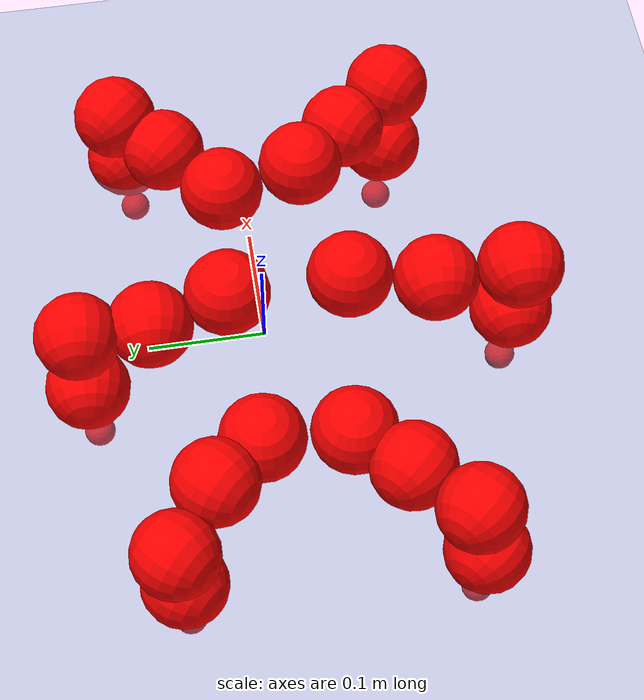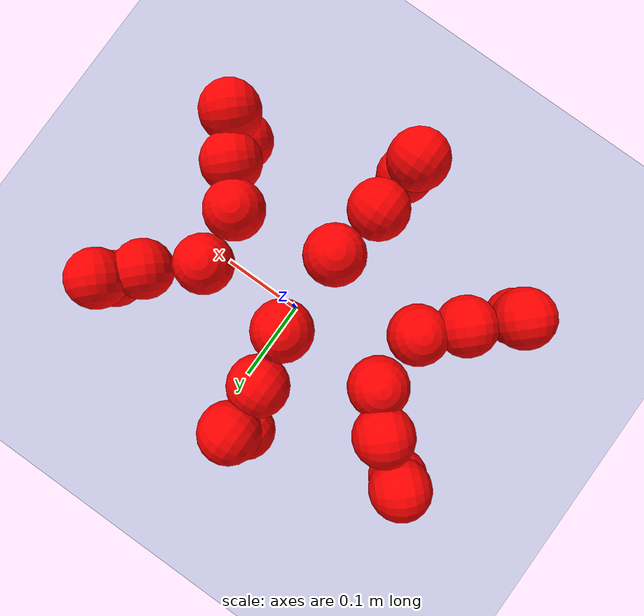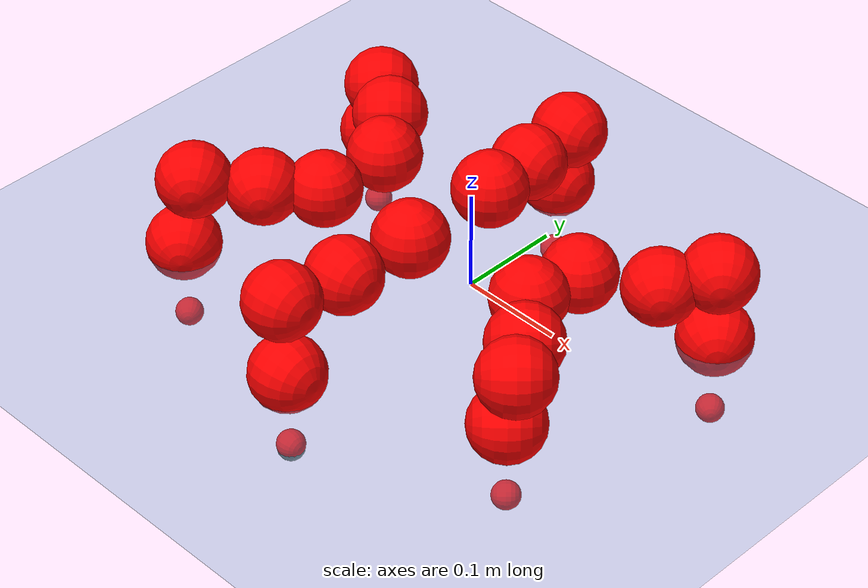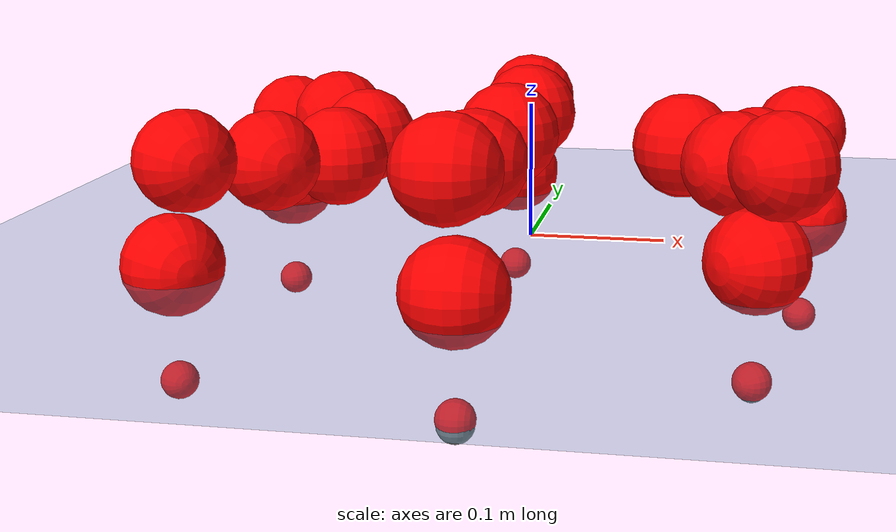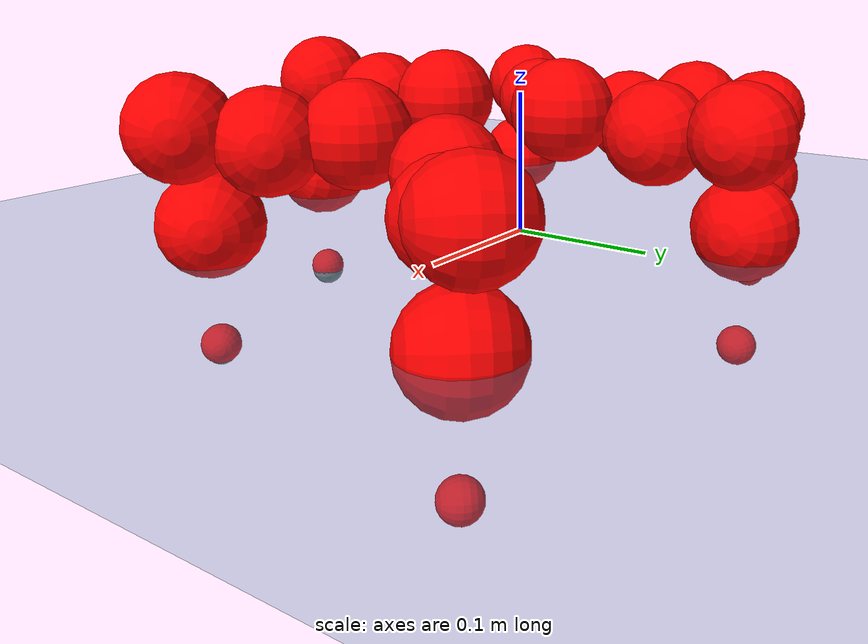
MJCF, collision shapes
<mujoco model="Golem">
  <compiler angle="radian" assetdir="assets" balanceinertia="true" inertiafromgeom="false"/>

  <option timestep="0.005" density="1.2" viscosity="2e-05"/>

  <size nkey="1"/>

  <visual>
    <quality shadowsize="8192"/>
    <map shadowclip="0.5"/>
  </visual>

  <default>
    <default class="/">
      <joint armature="0.01" damping="0.01" frictionloss="0.01"/>
      <geom contype="0" conaffinity="0" group="1" solref="-1000 -80"/>
      <site size="0.01 0.005 0.005" group="5"/>
      <general forcelimited="true" biastype="affine" gainprm="25" biasprm="0 -25 -0.5"/>
      <default class="visual">
        <geom type="mesh" group="2"/>
      </default>
      <default class="collision">
        <geom group="3"/>
      </default>
      <default class="foot">
        <geom size="0.01 0 0" condim="6" group="4" priority="1" solimp="0.015 1 0.01"/>
      </default>
      <default class="reward_collision_sphere">
        <geom group="5" rgba="1 0 0 1"/>
      </default>
    </default>
  </default>

  <asset>
    <texture type="skybox" colorspace="auto" name="//unnamed_texture_0" builtin="gradient" rgb1="0.95 0.95 0.95" rgb2="0.95 0.95 0.95" width="100" height="600"/>
    <texture type="2d" colorspace="auto" name="texplane" builtin="checker" rgb1="0.345 0.575 0.748" rgb2="0.345 0.575 0.748" markrgb="1 1 1" width="512" height="512"/>
    <material name="MatPlane" class="/" texture="texplane" texuniform="true" texrepeat="2 2" specular="0.9"/>
    <mesh name="body" class="/" file="body.stl" scale="0.001 0.001 0.001"/>
    <mesh name="coxa" class="/" file="coxa.stl" scale="0.001 0.001 0.001"/>
    <mesh name="femur" class="/" file="femur.stl" scale="0.001 0.001 0.001"/>
    <mesh name="tibia" class="/" file="tibia.stl" scale="0.001 0.001 0.001"/>
    <mesh name="tarsus" class="/" file="tarsus.stl" scale="0.001 0.001 0.001"/>
  </asset>

  <worldbody>
    <geom name="floor" class="/" size="100 100 0.125" type="plane" group="0" material="MatPlane"/>
    <light name="toplight_shadow" class="/" pos="0 0 5" dir="0.0990148 0.0990148 -0.990148" type="directional" ambient="0.04 0.04 0.04" diffuse="0.55 0.55 0.55" specular="0.12 0.12 0.12"/>
    <light name="toplight_fill" class="/" pos="0 0 5" dir="0.0990148 0.0990148 -0.990148" type="directional" castshadow="false" ambient="0.04 0.04 0.04" diffuse="0.3 0.3 0.3" specular="0.08 0.08 0.08"/>
    <body name="trunk" pos="-0.00677929 -0.013403 -0.009277" quat="1 0.000162324 -2.15427e-05 -5.42204e-05">
      <inertial pos="0.00772435 5.07644e-05 0.0149786" quat="0.999955 0.00583628 -0.00106256 0.00739214" mass="1.89659" diaginertia="0.00266653 0.000430685 0.0446802"/>
      <joint name="//unnamed_joint_0" type="free"/>
      <geom name="//unnamed_geom_1" class="/" pos="0 0 0.0862712" quat="1 0 0 0" type="mesh" rgba="0.9 0.9 0.9 1" mesh="body"/>
      <site name="imu" class="/" pos="0.113766 0.0495605 0.147035" size="0.00892229"/>
      <camera name="track" class="/" pos="0 -1.10468 0" quat="0.707107 0.707107 0 0" mode="trackcom"/>
      <camera name="ego_camera" class="/" pos="0.100927 0 0.134799" quat="-0.5 -0.5 0.5 0.5"/>
      <body name="coxa_RR" pos="-0.142345 -0.0581054 0.076267" quat="0.382887 0.00544169 -0.00322795 -0.923774">
        <inertial pos="0.000598998 0.014721 -0.0142633" quat="0.999115 -0.0114843 0.0337232 0.0223494" mass="0.121345" diaginertia="0.00282502 0.000558374 0.0446501"/>
        <joint name="coxa_joint_RR" class="/" pos="0 0 0" axis="-0.00417312 0.00607691 -0.999973" range="-3.36379 3.16276" armature="0.00815913" damping="0.0151933" frictionloss="0.0103376"/>
        <geom name="//unnamed_geom_2" class="/" type="mesh" rgba="0.2 0.2 0.2 1" mesh="coxa"/>
        <geom name="//unnamed_geom_3" class="reward_collision_sphere" size="0.0356891" pos="-0.0232908 0 0"/>
        <body name="femur_RR" pos="0.0315439 0.000964371 0.00345604" quat="0.500298 -0.502278 0.502707 0.494676">
          <inertial pos="0.0113325 -0.00133492 0.00459702" quat="0.999996 0.000287641 -0.00185946 -0.00207257" mass="0.136228" diaginertia="0.00269615 0.00048476 0.0421922"/>
          <joint name="femur_joint_RR" class="/" pos="0 0 0" axis="-0.00384524 -0.00172701 -0.999991" range="-2.93867 2.95879" armature="0.0141684" damping="0.0151174" frictionloss="0.00846249"/>
          <geom name="//unnamed_geom_4" class="/" type="mesh" rgba="0.9 0.9 0.9 1" mesh="femur"/>
          <geom name="//unnamed_geom_5" class="reward_collision_sphere" size="0.0356891"/>
          <body name="tibia_RR" pos="-0.007336 -0.0625818 -0.00105768" quat="4.36678e-05 1 1.9157e-05 2.12143e-05">
            <inertial pos="-0.00834231 -0.000525497 -0.00447513" quat="0.99904 0.0331935 -0.0276593 -0.00717134" mass="0.145028" diaginertia="0.00253104 0.000393246 0.0322051"/>
            <joint name="tibia_joint_RR" class="/" pos="0 0 0" axis="-0.0329877 0.042841 0.998537" stiffness="0.0374965" range="-2.98085 3.45834" armature="0.0107923" damping="0" frictionloss="0.00743399"/>
            <geom name="//unnamed_geom_6" class="/" type="mesh" rgba="0.2 0.2 0.2 1" mesh="tibia"/>
            <geom name="//unnamed_geom_7" class="reward_collision_sphere" size="0.0356891"/>
            <body name="tarsus_RR" pos="0.0705592 0.0133496 -0.00189539" quat="0.999999 -0.000571359 0.000838729 0.000697421">
              <inertial pos="0.0350378 -0.0158817 0.0123013" quat="0.473923 0.48945 0.507738 0.527292" mass="0.122319" diaginertia="0.00260612 0.000361288 0.0373223"/>
              <joint name="tarsus_joint_RR" class="/" pos="0 0 0" axis="0.04031 0.0157963 0.999062" stiffness="0.0156597" range="-3.43047 3.14933" armature="0.00613536" damping="0.048603" frictionloss="0.00517163"/>
              <geom name="//unnamed_geom_8" class="/" type="mesh" rgba="0.9 0.9 0.9 1" mesh="tarsus"/>
              <geom name="foot_1" class="foot" size="0.00654749" pos="0.0869524 0 0" quat="0 -0.707107 0 0.707107"/>
              <geom name="//unnamed_geom_10" class="reward_collision_sphere" size="0.0356891"/>
              <geom name="//unnamed_geom_11" class="reward_collision_sphere" size="0.0133834" pos="0.0834588 0 0"/>
              <site name="foot_1" class="foot" pos="0.0869524 0 0" quat="0 -0.707107 0 0.707107" size="0.00892229"/>
            </body>
          </body>
        </body>
      </body>
      <body name="coxa_RM" pos="0.0018373 -0.0809381 0.0999426" quat="0.707096 0.000137971 7.28845e-05 -0.707118">
        <inertial pos="0.00293763 -0.00782935 -0.00571936" quat="0.999993 -0.00103748 0.00347171 -0.000873411" mass="0.149719" diaginertia="0.00263149 0.000487356 0.0420212"/>
        <joint name="coxa_joint_RM" class="/" pos="0 0 0" axis="0.0208812 -0.0296997 -0.999341" stiffness="0.0694599" range="-3.05279 3.24619" armature="0.00830869" damping="0.0281688" frictionloss="0.0158416"/>
        <geom name="//unnamed_geom_12" class="/" type="mesh" rgba="0.2 0.2 0.2 1" mesh="coxa"/>
        <geom name="//unnamed_geom_13" class="reward_collision_sphere" size="0.0356891" pos="-0.0232908 0 0"/>
        <body name="femur_RM" pos="0.0469336 -0.00970516 -0.00637127" quat="0.498693 -0.500739 0.500967 0.499598">
          <inertial pos="-0.00060451 0.00875111 -0.0113198" quat="0.999721 0.00271728 -0.0233595 0.00217807" mass="0.149715" diaginertia="0.00339496 0.000569443 0.0454673"/>
          <joint name="femur_joint_RM" class="/" pos="0 0 0" axis="-0.0189489 -0.0138044 -0.999725" range="-3.23705 3.30776" armature="0.010152" damping="0.0606299" frictionloss="0.00933011"/>
          <geom name="//unnamed_geom_14" class="/" type="mesh" rgba="0.9 0.9 0.9 1" mesh="femur"/>
          <geom name="//unnamed_geom_15" class="reward_collision_sphere" size="0.0356891"/>
          <body name="tibia_RM" pos="-0.0096712 -0.0685033 -0.00383652" quat="3.88801e-05 1 0.000552004 0.000241569">
            <inertial pos="0.0147285 0.0137692 -0.00624621" quat="0.997211 -0.0552144 0.0501973 -0.00126625" mass="0.140445" diaginertia="0.00281665 0.000511388 0.0520183"/>
            <joint name="tibia_joint_RM" class="/" pos="0 0 0" axis="0.00414005 0.00316594 0.999986" range="-3.16542 2.98" armature="0.00478334" damping="0" frictionloss="0.00486194"/>
            <geom name="//unnamed_geom_16" class="/" type="mesh" rgba="0.2 0.2 0.2 1" mesh="tibia"/>
            <geom name="//unnamed_geom_17" class="reward_collision_sphere" size="0.0356891"/>
            <body name="tarsus_RM" pos="0.077043 0.0017765 -0.00494731" quat="0.999997 -0.00240671 0.000323788 0.000310572">
              <inertial pos="0.0485489 -0.00166106 0.00396315" quat="0.508011 0.496444 0.5023 0.493116" mass="0.124316" diaginertia="0.0022522 0.000470034 0.0384215"/>
              <joint name="tarsus_joint_RM" class="/" pos="0 0 0" axis="-0.000162115 0.0238655 0.999715" stiffness="0.0374615" range="-3.13984 3.15296" armature="0.0156016" damping="0.00154586" frictionloss="0.00777883"/>
              <geom name="//unnamed_geom_18" class="/" type="mesh" rgba="0.9 0.9 0.9 1" mesh="tarsus"/>
              <geom name="foot_2" class="foot" size="0.0128108" pos="0.0869524 0 0" quat="0 -0.707107 0 0.707107"/>
              <geom name="//unnamed_geom_20" class="reward_collision_sphere" size="0.0356891"/>
              <geom name="//unnamed_geom_21" class="reward_collision_sphere" size="0.0133834" pos="0.0834588 0 0"/>
              <site name="foot_2" class="foot" pos="0.0869524 0 0" quat="0 -0.707107 0 0.707107" size="0.00892229"/>
            </body>
          </body>
        </body>
      </body>
      <body name="coxa_RF" pos="0.13879 -0.0510133 0.0916262" quat="0.924035 -0.000168252 -0.000123274 -0.382308">
        <inertial pos="-0.0125384 0.00090339 -0.000177537" quat="0.999893 -0.012134 0.003858 -0.00717337" mass="0.143468" diaginertia="0.00233887 0.000492047 0.0523318"/>
        <joint name="coxa_joint_RF" class="/" pos="0 0 0" axis="0.0120922 -0.0142373 -0.999826" stiffness="0.027445" range="-2.94927 3.19275" armature="0.0129083" damping="0.00861742" frictionloss="0.00985893"/>
        <geom name="//unnamed_geom_22" class="/" type="mesh" rgba="0.2 0.2 0.2 1" mesh="coxa"/>
        <geom name="//unnamed_geom_23" class="reward_collision_sphere" size="0.0356891" pos="-0.0232908 0 0"/>
        <body name="femur_RF" pos="0.0321008 -0.0044775 -0.00372569" quat="0.499972 -0.499488 0.500432 0.500108">
          <inertial pos="0.00112011 0.00375689 0.0116768" quat="0.999639 0.015514 0.0201836 0.00856996" mass="0.166432" diaginertia="0.00319151 0.000429199 0.0436768"/>
          <joint name="femur_joint_RF" class="/" pos="0 0 0" axis="0.00165726 0.00422279 -0.99999" stiffness="0.049663" range="-3.39386 3.12662" armature="0.00459476" damping="0.0540589" frictionloss="0.00602238"/>
          <geom name="//unnamed_geom_24" class="/" type="mesh" rgba="0.9 0.9 0.9 1" mesh="femur"/>
          <geom name="//unnamed_geom_25" class="reward_collision_sphere" size="0.0356891"/>
          <body name="tibia_RF" pos="-0.00873741 -0.054104 -0.00881614" quat="0.000107664 1 3.26994e-05 4.56336e-05">
            <inertial pos="-0.00638772 -0.00988937 -0.000543296" quat="0.999631 0.00915413 0.0254941 0.00209005" mass="0.144734" diaginertia="0.00228545 0.000576697 0.0383151"/>
            <joint name="tibia_joint_RF" class="/" pos="0 0 0" axis="-0.0178473 0.00235132 0.999838" range="-3.18634 3.22501" armature="0.00603593" damping="0.0275019" frictionloss="0.0141947"/>
            <geom name="//unnamed_geom_26" class="/" type="mesh" rgba="0.2 0.2 0.2 1" mesh="tibia"/>
            <geom name="//unnamed_geom_27" class="reward_collision_sphere" size="0.0356891"/>
            <body name="tarsus_RF" pos="0.0641166 -0.0137486 0.00625631" quat="0.999975 0.00594922 0.0020122 -0.00324751">
              <inertial pos="0.0477518 0.0144464 0.00447431" quat="0.480857 0.479583 0.468321 0.565201" mass="0.165784" diaginertia="0.00237887 0.000623362 0.045906"/>
              <joint name="tarsus_joint_RF" class="/" pos="0 0 0" axis="-0.0447992 -0.0323 0.998474" stiffness="0.0518323" range="-3.42428 3.18759" armature="0.0023444" damping="0" frictionloss="0.00847088"/>
              <geom name="//unnamed_geom_28" class="/" type="mesh" rgba="0.9 0.9 0.9 1" mesh="tarsus"/>
              <geom name="foot_3" class="foot" size="0.0106738" pos="0.0869524 0 0" quat="0 -0.707107 0 0.707107"/>
              <geom name="//unnamed_geom_30" class="reward_collision_sphere" size="0.0356891"/>
              <geom name="//unnamed_geom_31" class="reward_collision_sphere" size="0.0133834" pos="0.0834588 0 0"/>
              <site name="foot_3" class="foot" pos="0.0869524 0 0" quat="0 -0.707107 0 0.707107" size="0.00892229"/>
            </body>
          </body>
        </body>
      </body>
      <body name="coxa_LR" pos="-0.139487 0.0479128 0.078544" quat="0.382083 -0.00180753 -0.00298011 0.924121">
        <inertial pos="0.00558057 0.0149299 -0.00533728" quat="0.998282 0.0466114 -0.0246813 0.0255217" mass="0.169664" diaginertia="0.0032002 0.00050168 0.0523103"/>
        <joint name="coxa_joint_LR" class="/" pos="0 0 0" axis="-0.0182875 0.0351668 -0.999214" stiffness="0.0522858" range="-2.98605 2.85179" armature="0.0150252" damping="0" frictionloss="0.0103904"/>
        <geom name="//unnamed_geom_32" class="/" type="mesh" rgba="0.2 0.2 0.2 1" mesh="coxa"/>
        <geom name="//unnamed_geom_33" class="reward_collision_sphere" size="0.0356891" pos="-0.0232908 0 0"/>
        <body name="femur_LR" pos="0.0305383 -0.00431337 0.00716881" quat="0.500047 -0.498101 0.504367 0.497456">
          <inertial pos="-0.00566049 0.000459015 -0.00421582" quat="0.997454 -0.0230541 0.027064 0.0618128" mass="0.1651" diaginertia="0.0028858 0.000533119 0.0372619"/>
          <joint name="femur_joint_LR" class="/" pos="0 0 0" axis="0.0395708 0.0107366 0.999159" stiffness="0.0608002" range="-3.448 3.37394" armature="0.00530832" damping="0.0368123" frictionloss="0.0100874"/>
          <geom name="//unnamed_geom_34" class="/" type="mesh" rgba="0.9 0.9 0.9 1" mesh="femur"/>
          <geom name="//unnamed_geom_35" class="reward_collision_sphere" size="0.0356891"/>
          <body name="tibia_LR" pos="0.00965696 -0.0616831 0.00987268" quat="-0.00377936 0.999991 -0.00198721 0.000470141">
            <inertial pos="0.00215832 0.0140872 -0.00989169" quat="0.998938 0.0208501 0.0304948 0.0275274" mass="0.13993" diaginertia="0.00244857 0.000462058 0.0447706"/>
            <joint name="tibia_joint_LR" class="/" pos="0 0 0" axis="-0.00261596 -0.00328533 -0.999991" range="-2.90323 2.96079" armature="0.0125254" damping="0.0771014" frictionloss="0.00466151"/>
            <geom name="//unnamed_geom_36" class="/" type="mesh" rgba="0.2 0.2 0.2 1" mesh="tibia"/>
            <geom name="//unnamed_geom_37" class="reward_collision_sphere" size="0.0356891"/>
            <body name="tarsus_LR" pos="0.0541347 0.000466928 -0.00574594" quat="0.99998 0.00514954 0.00340742 -0.00152412">
              <inertial pos="0.04471 0.00318995 -0.00103949" quat="0.541083 0.492234 0.476991 0.487252" mass="0.132859" diaginertia="0.00239456 0.000463164 0.0374546"/>
              <joint name="tarsus_joint_LR" class="/" pos="0 0 0" axis="-0.00822349 -0.00464695 -0.999955" stiffness="0.0621222" range="-2.88166 3.14016" armature="0.00926072" damping="0.0414737" frictionloss="0.0148652"/>
              <geom name="//unnamed_geom_38" class="/" type="mesh" rgba="0.9 0.9 0.9 1" mesh="tarsus"/>
              <geom name="foot_4" class="foot" size="0.008859" pos="0.0869524 0 0" quat="0.707107 0 -0.707107 0"/>
              <geom name="//unnamed_geom_40" class="reward_collision_sphere" size="0.0356891"/>
              <geom name="//unnamed_geom_41" class="reward_collision_sphere" size="0.0133834" pos="0.0834588 0 0"/>
              <site name="foot_4" class="foot" pos="0.0869524 0 0" quat="0.707107 0 -0.707107 0" size="0.00892229"/>
            </body>
          </body>
        </body>
      </body>
      <body name="coxa_LM" pos="0.000326631 0.0664517 0.098486" quat="0.708039 -0.00146351 0.00387059 0.706161">
        <inertial pos="0.0125739 0.00553574 0.0113289" quat="0.999991 0.00372779 -1.0648e-05 -0.00177487" mass="0.133713" diaginertia="0.0031662 0.000590119 0.0358804"/>
        <joint name="coxa_joint_LM" class="/" pos="0 0 0" axis="-0.0156945 -0.00517869 -0.999863" range="-3.14779 3.15357" armature="0.00310003" damping="0.0779916" frictionloss="0.0133136"/>
        <geom name="//unnamed_geom_42" class="/" type="mesh" rgba="0.2 0.2 0.2 1" mesh="coxa"/>
        <geom name="//unnamed_geom_43" class="reward_collision_sphere" size="0.0356891" pos="-0.0232908 0 0"/>
        <body name="femur_LM" pos="0.0415628 0.0138334 -0.0116321" quat="0.499824 -0.500106 0.500844 0.499226">
          <inertial pos="-0.0115505 -0.00819494 -0.0133896" quat="1 6.89318e-05 1.02424e-06 -0.00057558" mass="0.142028" diaginertia="0.00256138 0.000510405 0.0485386"/>
          <joint name="femur_joint_LM" class="/" pos="0 0 0" axis="-0.027775 -0.0106687 0.999557" range="-3.19344 3.36783" armature="0.00516422" damping="0.0144504" frictionloss="0.00437885"/>
          <geom name="//unnamed_geom_44" class="/" type="mesh" rgba="0.9 0.9 0.9 1" mesh="femur"/>
          <geom name="//unnamed_geom_45" class="reward_collision_sphere" size="0.0356891"/>
          <body name="tibia_LM" pos="-0.0039087 -0.058733 0.00443806" quat="-0.000371158 1 0.000448156 -0.000348066">
            <inertial pos="0.00919784 0.0145678 -0.0154565" quat="0.996969 -0.0510627 0.0441261 -0.038699" mass="0.147753" diaginertia="0.00268822 0.000525467 0.0516768"/>
            <joint name="tibia_joint_LM" class="/" pos="0 0 0" axis="0.0509496 0.023823 -0.998417" stiffness="0.0759316" range="-3.1278 3.40634" armature="0.00578635" damping="0" frictionloss="0.00858429"/>
            <geom name="//unnamed_geom_46" class="/" type="mesh" rgba="0.2 0.2 0.2 1" mesh="tibia"/>
            <geom name="//unnamed_geom_47" class="reward_collision_sphere" size="0.0356891"/>
            <body name="tarsus_LM" pos="0.0638865 0.000540055 -0.0132022" quat="0.999995 0.00210817 0.00234313 0.000174582">
              <inertial pos="0.0544029 0.00516342 0.0123487" quat="0.474168 0.473463 0.561057 0.486017" mass="0.131414" diaginertia="0.00317751 0.000644399 0.0549119"/>
              <joint name="tarsus_joint_LM" class="/" pos="0 0 0" axis="-0.0636808 -0.00731918 -0.997943" stiffness="0.0339273" range="-3.11989 3.40029" armature="0.0125057" damping="0" frictionloss="0.00863141"/>
              <geom name="//unnamed_geom_48" class="/" type="mesh" rgba="0.9 0.9 0.9 1" mesh="tarsus"/>
              <geom name="foot_5" class="foot" size="0.00863575" pos="0.0869524 0 0" quat="0.707107 0 -0.707107 0"/>
              <geom name="//unnamed_geom_50" class="reward_collision_sphere" size="0.0356891"/>
              <geom name="//unnamed_geom_51" class="reward_collision_sphere" size="0.0133834" pos="0.0834588 0 0"/>
              <site name="foot_5" class="foot" pos="0.0869524 0 0" quat="0.707107 0 -0.707107 0" size="0.00892229"/>
            </body>
          </body>
        </body>
      </body>
      <body name="coxa_LF" pos="0.134439 0.0506684 0.0744887" quat="0.923746 -0.00530896 -0.00438805 0.382944">
        <inertial pos="-0.00522417 0.00464212 -0.00652781" quat="0.996987 0.0194592 -0.0731741 -0.0168538" mass="0.111499" diaginertia="0.00296559 0.000406969 0.0506892"/>
        <joint name="coxa_joint_LF" class="/" pos="0 0 0" axis="-0.00708371 0.0282234 -0.999577" stiffness="0.0327319" range="-3.14292 3.15184" armature="0.00887705" damping="0.045991" frictionloss="0.00727878"/>
        <geom name="//unnamed_geom_52" class="/" type="mesh" rgba="0.2 0.2 0.2 1" mesh="coxa"/>
        <geom name="//unnamed_geom_53" class="reward_collision_sphere" size="0.0356891" pos="-0.0232908 0 0"/>
        <body name="femur_LF" pos="0.0473439 -0.0065741 -0.00978008" quat="0.500432 -0.500292 0.50003 0.499245">
          <inertial pos="-0.0129733 0.00584261 -0.014329" quat="0.999517 0.0201428 -0.0227123 -0.00662939" mass="0.173648" diaginertia="0.00330858 0.000503605 0.0479538"/>
          <joint name="femur_joint_LF" class="/" pos="0 0 0" axis="0.0118769 -0.045774 0.998881" range="-3.1547 2.82442" armature="0.00372568" damping="0.047409" frictionloss="0.0084227"/>
          <geom name="//unnamed_geom_54" class="/" type="mesh" rgba="0.9 0.9 0.9 1" mesh="femur"/>
          <geom name="//unnamed_geom_55" class="reward_collision_sphere" size="0.0356891"/>
          <body name="tibia_LF" pos="-0.0112098 -0.0510515 0.00352067" quat="-0.0047468 0.999987 -0.00164497 6.53125e-05">
            <inertial pos="0.00409662 -0.0047036 0.000582283" quat="1 -0.000402261 -0.000298457 -0.000640286" mass="0.145185" diaginertia="0.00287909 0.000513763 0.0454856"/>
            <joint name="tibia_joint_LF" class="/" pos="0 0 0" axis="-0.0382762 0.0453139 -0.998239" range="-3.00516 2.93124" armature="0.015102" damping="0.0141228" frictionloss="0.00639565"/>
            <geom name="//unnamed_geom_56" class="/" type="mesh" rgba="0.2 0.2 0.2 1" mesh="tibia"/>
            <geom name="//unnamed_geom_57" class="reward_collision_sphere" size="0.0356891"/>
            <body name="tarsus_LF" pos="0.0669709 -0.000859525 0.00518147" quat="0.999994 -0.00225843 -0.00244308 0.000663182">
              <inertial pos="0.0585065 -0.00629071 0.00170133" quat="0.498435 0.49718 0.502325 0.50204" mass="0.171012" diaginertia="0.00325809 0.000599056 0.0459939"/>
              <joint name="tarsus_joint_LF" class="/" pos="0 0 0" axis="-0.0381744 -0.00933942 -0.999227" stiffness="0.015079" range="-2.8645 2.8551" armature="0.0085234" damping="0.045285" frictionloss="0.00952806"/>
              <geom name="//unnamed_geom_58" class="/" type="mesh" rgba="0.9 0.9 0.9 1" mesh="tarsus"/>
              <geom name="foot_6" class="foot" size="0.00908281" pos="0.0869524 0 0" quat="0.707107 0 -0.707107 0"/>
              <geom name="//unnamed_geom_60" class="reward_collision_sphere" size="0.0356891"/>
              <geom name="//unnamed_geom_61" class="reward_collision_sphere" size="0.0133834" pos="0.0834588 0 0"/>
              <site name="foot_6" class="foot" pos="0.0869524 0 0" quat="0.707107 0 -0.707107 0" size="0.00892229"/>
            </body>
          </body>
        </body>
      </body>
    </body>
  </worldbody>

  <contact>
    <pair class="/" geom1="floor" geom2="foot_1" name="//unnamed_contact_0"/>
    <pair class="/" geom1="floor" geom2="foot_2" name="//unnamed_contact_1"/>
    <pair class="/" geom1="floor" geom2="foot_3" name="//unnamed_contact_2"/>
    <pair class="/" geom1="floor" geom2="foot_4" name="//unnamed_contact_3"/>
    <pair class="/" geom1="floor" geom2="foot_5" name="//unnamed_contact_4"/>
    <pair class="/" geom1="floor" geom2="foot_6" name="//unnamed_contact_5"/>
  </contact>

  <actuator>
    <general name="coxa_joint_RR" class="/" joint="coxa_joint_RR" forcerange="-4.76564 4.76564" gainprm="21.9918" biasprm="0 -21.9918 -0.443062"/>
    <general name="femur_joint_RR" class="/" joint="femur_joint_RR" forcerange="-8.52579 8.52579" gainprm="21.9918" biasprm="0 -21.9918 -0.443062"/>
    <general name="tibia_joint_RR" class="/" joint="tibia_joint_RR" forcerange="-10.0942 10.0942" gainprm="21.9918" biasprm="0 -21.9918 -0.443062"/>
    <general name="tarsus_joint_RR" class="/" joint="tarsus_joint_RR" forcerange="-8.90858 8.90858" gainprm="21.9918" biasprm="0 -21.9918 -0.443062"/>
    <general name="coxa_joint_RM" class="/" joint="coxa_joint_RM" forcerange="-6.52155 6.52155" gainprm="21.9918" biasprm="0 -21.9918 -0.443062"/>
    <general name="femur_joint_RM" class="/" joint="femur_joint_RM" forcerange="-6.24326 6.24326" gainprm="21.9918" biasprm="0 -21.9918 -0.443062"/>
    <general name="tibia_joint_RM" class="/" joint="tibia_joint_RM" forcerange="-10.3132 10.3132" gainprm="21.9918" biasprm="0 -21.9918 -0.443062"/>
    <general name="tarsus_joint_RM" class="/" joint="tarsus_joint_RM" forcerange="-7.85324 7.85324" gainprm="21.9918" biasprm="0 -21.9918 -0.443062"/>
    <general name="coxa_joint_RF" class="/" joint="coxa_joint_RF" forcerange="-6.82709 6.82709" gainprm="21.9918" biasprm="0 -21.9918 -0.443062"/>
    <general name="femur_joint_RF" class="/" joint="femur_joint_RF" forcerange="-2.71026 2.71026" gainprm="21.9918" biasprm="0 -21.9918 -0.443062"/>
    <general name="tibia_joint_RF" class="/" joint="tibia_joint_RF" forcerange="-4.50517 4.50517" gainprm="21.9918" biasprm="0 -21.9918 -0.443062"/>
    <general name="tarsus_joint_RF" class="/" joint="tarsus_joint_RF" forcerange="-2.73335 2.73335" gainprm="21.9918" biasprm="0 -21.9918 -0.443062"/>
    <general name="coxa_joint_LR" class="/" joint="coxa_joint_LR" forcerange="-9.51788 9.51788" gainprm="21.9918" biasprm="0 -21.9918 -0.443062"/>
    <general name="femur_joint_LR" class="/" joint="femur_joint_LR" forcerange="-4.9067 4.9067" gainprm="21.9918" biasprm="0 -21.9918 -0.443062"/>
    <general name="tibia_joint_LR" class="/" joint="tibia_joint_LR" forcerange="-4.26971 4.26971" gainprm="21.9918" biasprm="0 -21.9918 -0.443062"/>
    <general name="tarsus_joint_LR" class="/" joint="tarsus_joint_LR" forcerange="-6.41802 6.41802" gainprm="21.9918" biasprm="0 -21.9918 -0.443062"/>
    <general name="coxa_joint_LM" class="/" joint="coxa_joint_LM" forcerange="-4.58209 4.58209" gainprm="21.9918" biasprm="0 -21.9918 -0.443062"/>
    <general name="femur_joint_LM" class="/" joint="femur_joint_LM" forcerange="-6.24854 6.24854" gainprm="21.9918" biasprm="0 -21.9918 -0.443062"/>
    <general name="tibia_joint_LM" class="/" joint="tibia_joint_LM" forcerange="-9.93494 9.93494" gainprm="21.9918" biasprm="0 -21.9918 -0.443062"/>
    <general name="tarsus_joint_LM" class="/" joint="tarsus_joint_LM" forcerange="-9.09719 9.09719" gainprm="21.9918" biasprm="0 -21.9918 -0.443062"/>
    <general name="coxa_joint_LF" class="/" joint="coxa_joint_LF" forcerange="-4.99082 4.99082" gainprm="21.9918" biasprm="0 -21.9918 -0.443062"/>
    <general name="femur_joint_LF" class="/" joint="femur_joint_LF" forcerange="-9.60697 9.60697" gainprm="21.9918" biasprm="0 -21.9918 -0.443062"/>
    <general name="tibia_joint_LF" class="/" joint="tibia_joint_LF" forcerange="-6.45848 6.45848" gainprm="21.9918" biasprm="0 -21.9918 -0.443062"/>
    <general name="tarsus_joint_LF" class="/" joint="tarsus_joint_LF" forcerange="-6.41243 6.41243" gainprm="21.9918" biasprm="0 -21.9918 -0.443062"/>
  </actuator>

  <sensor>
    <gyro site="imu" name="imu_angular_velocity"/>
    <velocimeter site="imu" name="imu_linear_velocity"/>
    <framelinvel objtype="site" objname="foot_1" name="foot_1_global_linear_velocity"/>
    <framelinvel objtype="site" objname="foot_2" name="foot_2_global_linear_velocity"/>
    <framelinvel objtype="site" objname="foot_3" name="foot_3_global_linear_velocity"/>
    <framelinvel objtype="site" objname="foot_4" name="foot_4_global_linear_velocity"/>
    <framelinvel objtype="site" objname="foot_5" name="foot_5_global_linear_velocity"/>
    <framelinvel objtype="site" objname="foot_6" name="foot_6_global_linear_velocity"/>
  </sensor>

  <keyframe>
    <key name="home" qpos="0 0 0.1457 1 0 0 0 0 0 0 0 0 0 0 0 0 0 0 0 0 0 0 0 0 0 0 0 0 0 0 0"/>
  </keyframe>
</mujoco>
